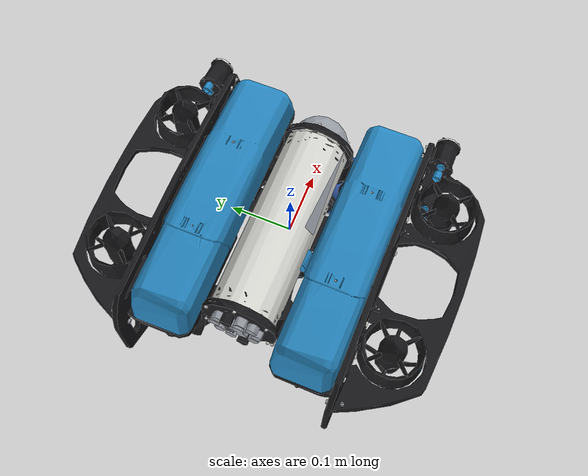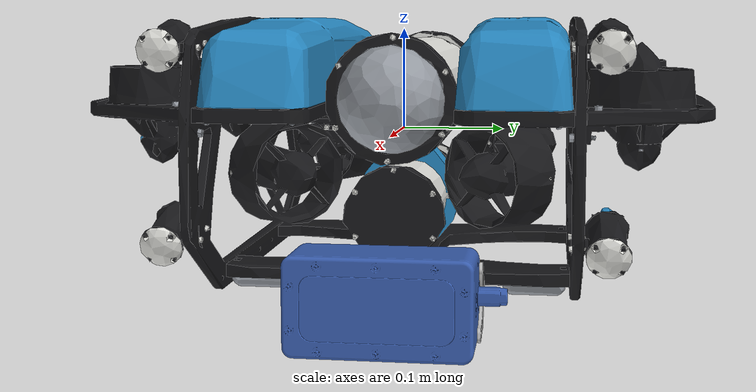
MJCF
<mujoco model="bluerov2_heavy_c3">

  <compiler angle="radian" meshdir="meshes" autolimits="true"/>

  <!-- density=0 viscosity=0: MuJoCo's built-in fluid model is OFF on purpose;
       all hydrodynamics are injected by hydro.py. -->
  <option timestep="0.002" integrator="implicitfast" density="0" viscosity="0"/>

  <visual>
    <headlight ambient="0.6 0.6 0.62" diffuse="0.85 0.85 0.88" specular="0.25 0.25 0.25"/>
    <rgba haze="0.12 0.18 0.28 1"/>
    <scale framelength="0.25" framewidth="0.008"/>
    <global offwidth="1280" offheight="960"/>
  </visual>

  <asset>
    <mesh name="bluerov_body"     file="bluerov_body.obj"/>
    <mesh name="bluerov_thruster" file="bluerov_thruster.obj"/>
    <material name="hull"      rgba="0.33 0.37 0.44 1" specular="0.35" shininess="0.3"/>
    <material name="thruster"  rgba="0.12 0.13 0.16 1" specular="0.4" shininess="0.4"/>
    <material name="collision" rgba="0.85 0.45 0.20 0.25"/>
    <material name="c3_housing" rgba="0.231373 0.380392 0.705882 1" specular="0.35" shininess="0.4"/>
    <material name="c3_mount_gray" rgba="0.752941 0.752941 0.752941 1" specular="0.4" shininess="0.4"/>
    <mesh name="c3_camera" file="c3_camera.stl" inertia="shell"/>
    <mesh name="c3_mount" file="c3_mount.stl" inertia="shell"/>
    <mesh name="rovc_cyan"   file="rov_body_cyan.obj"/>
    <mesh name="rovc_white"  file="rov_body_white.obj"/>
    <mesh name="rovc_black"  file="rov_body_black.obj"/>
    <mesh name="rovc_silver" file="rov_body_silver.obj"/>
    <material name="rovc_cyan"   rgba="0.16 0.55 0.78 1" specular="0.3" shininess="0.35"/>
    <material name="rovc_white"  rgba="0.90 0.90 0.88 1" specular="0.3" shininess="0.35"/>
    <material name="rovc_black"  rgba="0.10 0.10 0.11 1" specular="0.3" shininess="0.35"/>
    <material name="rovc_silver" rgba="0.60 0.62 0.65 1" specular="0.4" shininess="0.4"/>
  </asset>

  <default>
    <default class="visual">
      <geom type="mesh" contype="0" conaffinity="0" group="2"/>
    </default>
    <default class="collision">
      <geom type="box" group="3" material="collision" contype="1" conaffinity="1"/>
    </default>
    <default class="thruster">
      <site type="cylinder" size="0.012 0.004" rgba="0.1 0.7 1 1" group="4"/>
    </default>
    <default class="ref">
      <site type="sphere" size="0.012" group="4"/>
    </default>
  </default>

  <worldbody>
    <light name="key"  pos="0.8 0.8 2.5"  dir="-0.3 -0.3 -1" directional="true"
           diffuse="0.55 0.55 0.6" specular="0.2 0.2 0.2"/>
    <light name="fill" pos="-0.8 -0.6 1.2" dir="0.4 0.3 -1" directional="true"
           diffuse="0.35 0.35 0.4" specular="0.1 0.1 0.1"/>
    <body name="base_link" pos="0 0 0">
      <freejoint name="free"/>
      <inertial pos="0 0 0" mass="13.2000" diaginertia="0.37014 0.73153 0.67460"/>

      <geom class="visual" mesh="rovc_cyan"   material="rovc_cyan" pos="-0.02559 -0.00103 0.02007"/>
      <geom class="visual" mesh="rovc_white"  material="rovc_white" pos="-0.02559 -0.00103 0.02007"/>
      <geom class="visual" mesh="rovc_black"  material="rovc_black" pos="-0.02559 -0.00103 0.02007"/>
      <geom class="visual" mesh="rovc_silver" material="rovc_silver" pos="-0.02559 -0.00103 0.02007"/>

      <!-- ===== collision proxy ===== -->
      <geom class="collision" pos="-0.02559 -0.00103 -0.02993" size="0.25 0.175 0.125"/>

      <site name="thruster_0" class="thruster" pos="0.10991 -0.10103 -0.05243" quat="0.92388 0 0 0.382684"/>
      <site name="thruster_1" class="thruster" pos="0.10991 0.09897 -0.05243" quat="0.92388 0 0 -0.382684"/>
      <site name="thruster_2" class="thruster" pos="-0.17309 -0.10103 -0.05243" quat="0.382683 0 0 0.92388"/>
      <site name="thruster_3" class="thruster" pos="-0.17309 0.09897 -0.05243" quat="-0.382683 0 0 0.92388"/>
      <site name="thruster_4" class="thruster" pos="0.09441 -0.22103 0.01507" quat="-0.707107 0 0.707107 0"/>
      <site name="thruster_5" class="thruster" pos="0.09441 0.21897 0.01507" quat="-0.707107 0 0.707107 0"/>
      <site name="thruster_6" class="thruster" pos="-0.14559 -0.22103 0.01507" quat="-0.707107 0 0.707107 0"/>
      <site name="thruster_7" class="thruster" pos="-0.14559 0.21897 0.01507" quat="-0.707107 0 0.707107 0"/>
      <geom class="visual" type="mesh" mesh="c3_mount" pos="0.10991 0.00444 -0.14600"
            material="c3_mount_gray"/>
      <geom class="visual" type="mesh" mesh="c3_camera" pos="0.17310 0.00697 -0.13576"
            material="c3_housing"/>
      <camera name="c3_center" pos="0.21390 0.00444 -0.13530"
              xyaxes="-0.00000 -1.00000 -0.00000 -0.00560 0.00000 0.99998" fovy="52.5"/>
      <camera name="c3_left" pos="0.21390 0.04194 -0.13530"
              xyaxes="-0.00000 -1.00000 -0.00000 -0.00560 0.00000 0.99998" fovy="55.5"/>
      <camera name="c3_right" pos="0.21390 -0.03306 -0.13530"
              xyaxes="-0.00000 -1.00000 -0.00000 -0.00560 0.00000 0.99998" fovy="55.5"/>

      <!-- reference site at the base_link origin -->
      <site name="base_origin" class="ref" pos="-0.02559 -0.00103 0.02007" rgba="1 0.2 0.2 1"/>
    </body>
  </worldbody>

  <!-- ===== 8 thruster force actuators (ctrl = thrust in N, T200 curve) ===== -->
  <actuator>
    <general name="thr0" site="thruster_0" gear="1 0 0 0 0 0" ctrlrange="-51.5507 64.1319"/>
    <general name="thr1" site="thruster_1" gear="1 0 0 0 0 0" ctrlrange="-51.5507 64.1319"/>
    <general name="thr2" site="thruster_2" gear="1 0 0 0 0 0" ctrlrange="-51.5507 64.1319"/>
    <general name="thr3" site="thruster_3" gear="1 0 0 0 0 0" ctrlrange="-51.5507 64.1319"/>
    <general name="thr4" site="thruster_4" gear="1 0 0 0 0 0" ctrlrange="-51.5507 64.1319"/>
    <general name="thr5" site="thruster_5" gear="1 0 0 0 0 0" ctrlrange="-51.5507 64.1319"/>
    <general name="thr6" site="thruster_6" gear="1 0 0 0 0 0" ctrlrange="-51.5507 64.1319"/>
    <general name="thr7" site="thruster_7" gear="1 0 0 0 0 0" ctrlrange="-51.5507 64.1319"/>
  </actuator>
</mujoco>
